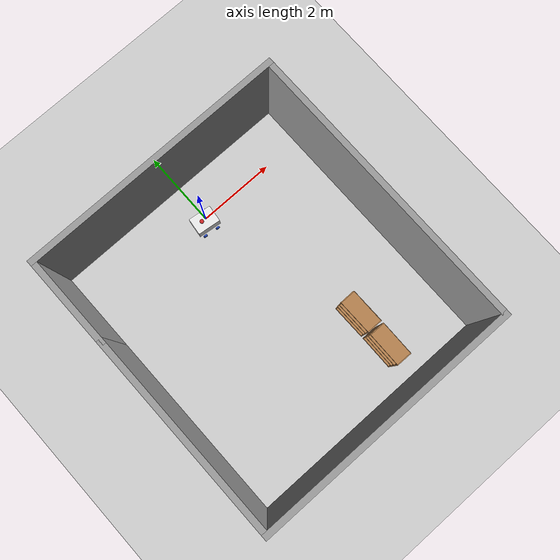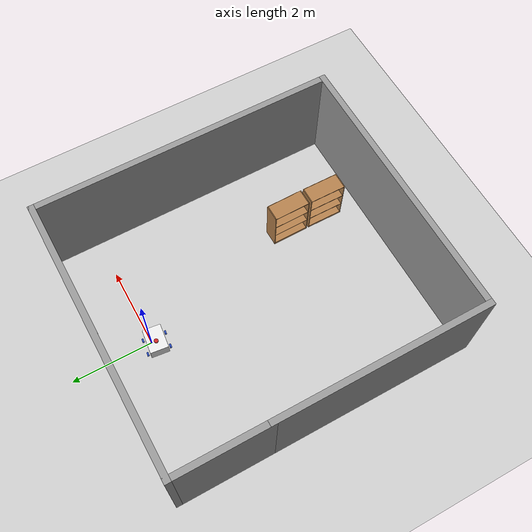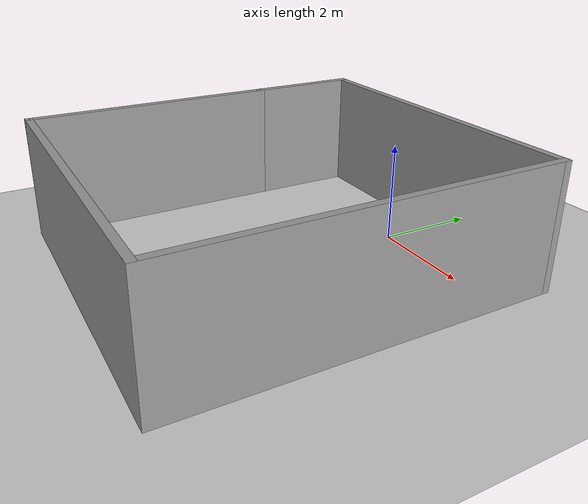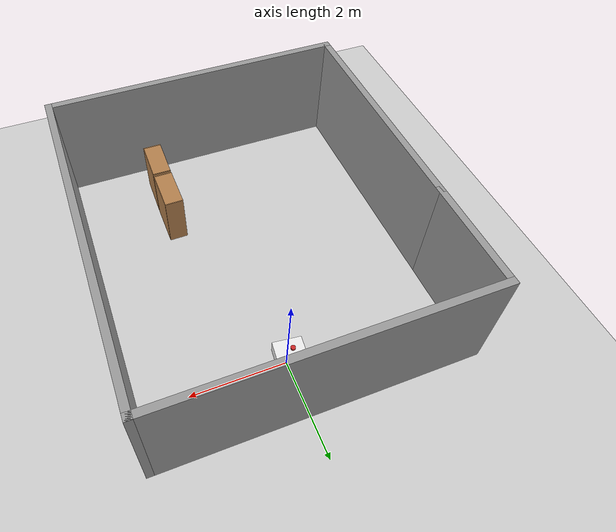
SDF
<sdf version="1.7">
 <world name="default">
  <light name="sun" type="directional">
   <pose>0 0 10 0 -0 0</pose>
   <diffuse>0.8 0.8 0.8 1</diffuse>
   <specular>0.2 0.2 0.2 1</specular>
   <attenuation>
    <range>1000</range>
    <constant>0.9</constant>
    <linear>0.01</linear>
    <quadratic>0.001</quadratic>
   </attenuation>
   <direction>-0.5 0.1 -0.9</direction>
   <spot><inner_angle>0</inner_angle><outer_angle>0</outer_angle><falloff>0</falloff></spot>
  </light>
  <model name="ground_plane">
   <static>1</static>
   <link name="link">
    <collision name="collision">
     <geometry><plane><normal>0 0 1</normal><size>100 100</size></plane></geometry>
     <surface>
      <contact><collide_bitmask>65535</collide_bitmask></contact>
      <friction><ode><mu>100</mu><mu2>50</mu2></ode></friction>
     </surface>
    </collision>
    <visual name="visual">
     <cast_shadows>0</cast_shadows>
     <geometry><plane><normal>0 0 1</normal><size>100 100</size></plane></geometry>
     <material>
      <script><uri>file://media/materials/scripts/gazebo.material</uri><name>Gazebo/Grey</name></script>
     </material>
    </visual>
   </link>
  </model>
  <gravity>0 0 -9.8</gravity>
  <magnetic_field>6e-06 2.3e-05 -4.2e-05</magnetic_field>
  <atmosphere type="adiabatic"/>
  <physics type="ode">
   <max_step_size>0.001</max_step_size>
   <real_time_factor>1</real_time_factor>
   <real_time_update_rate>1000</real_time_update_rate>
  </physics>
  <scene><ambient>0.4 0.4 0.4 1</ambient><background>0.7 0.7 0.7 1</background><shadows>1</shadows></scene>
  <audio><device>default</device></audio>
  <spherical_coordinates>
   <surface_model>EARTH_WGS84</surface_model>
   <latitude_deg>0</latitude_deg>
   <longitude_deg>0</longitude_deg>
   <elevation>0</elevation>
   <heading_deg>0</heading_deg>
  </spherical_coordinates>
  <model name="mybot_2wd">
   <link name="base_link">
    <inertial>
     <pose>-0.002258 0 0.165484 0 -0 0</pose>
     <mass>3.1</mass>
     <inertia>
      <ixx>0.0737726</ixx>
      <ixy>0</ixy>
      <ixz>0.00115161</ixz>
      <iyy>0.115847</iyy>
      <iyz>0</iyz>
      <izz>0.138999</izz>
     </inertia>
    </inertial>
    <collision name="base_link_fixed_joint_lump__chassis_collision">
     <pose>0 0 0.16 0 -0 0</pose>
     <geometry><box><size>0.6 0.44 0.3</size></box></geometry>
    </collision>
    <collision name="base_link_fixed_joint_lump__laser_frame_collision_1">
     <pose>-0.07 0 0.33 0 -0 0</pose>
     <geometry><cylinder><length>0.04</length><radius>0.05</radius></cylinder></geometry>
    </collision>
    <visual name="base_link_fixed_joint_lump__chassis_visual">
     <pose>0 0 0.16 0 -0 0</pose>
     <geometry><box><size>0.6 0.44 0.3</size></box></geometry>
     <material>
      <script><name>Gazebo/White</name><uri>file://media/materials/scripts/gazebo.material</uri></script>
     </material>
    </visual>
    <visual name="base_link_fixed_joint_lump__laser_frame_visual_1">
     <pose>-0.07 0 0.33 0 -0 0</pose>
     <geometry><cylinder><length>0.04</length><radius>0.05</radius></cylinder></geometry>
     <material>
      <script><name>Gazebo/Red</name><uri>file://media/materials/scripts/gazebo.material</uri></script>
     </material>
    </visual>
    <sensor name="laser" type="ray">
     <visualize>1</visualize>
     <update_rate>10</update_rate>
     <ray>
      <scan>
       <horizontal>
        <samples>360</samples>
        <resolution>1</resolution>
        <min_angle>-3.14</min_angle>
        <max_angle>3.14</max_angle>
       </horizontal>
       <vertical><samples>1</samples><min_angle>0</min_angle><max_angle>0</max_angle></vertical>
      </scan>
      <range><min>0.3</min><max>12</max><resolution>0.01</resolution></range>
     </ray>
     <plugin name="laser_controller" filename="libgazebo_ros_ray_sensor.so">
      <ros><argument>~/out:=scan</argument></ros>
      <output_type>sensor_msgs/LaserScan</output_type>
      <frame_name>laser_frame</frame_name>
     </plugin>
     <pose>-0.07 0 0.33 0 -0 0</pose>
    </sensor>
   </link>
   <joint name="left_front_wheel_joint" type="revolute">
    <pose relative_to="base_link">0.18 0.275 0 -1.5707 0 0</pose>
    <parent>base_link</parent>
    <child>left_front_wheel</child>
    <axis>
     <xyz>0 0 1</xyz>
     <limit><lower>-1e+16</lower><upper>1e+16</upper></limit>
     <dynamics><spring_reference>0</spring_reference><spring_stiffness>0</spring_stiffness></dynamics>
    </axis>
   </joint>
   <link name="left_front_wheel">
    <pose relative_to="left_front_wheel_joint">0 0 0 0 -0 0</pose>
    <inertial>
     <mass>0.2</mass>
     <inertia>
      <ixx>0.000151667</ixx>
      <ixy>0</ixy>
      <ixz>0</ixz>
      <iyy>0.000151667</iyy>
      <iyz>0</iyz>
      <izz>0.00025</izz>
     </inertia>
    </inertial>
    <collision name="left_front_wheel_collision">
     <geometry><cylinder><length>0.04</length><radius>0.05</radius></cylinder></geometry>
    </collision>
    <visual name="left_front_wheel_visual">
     <geometry><cylinder><length>0.04</length><radius>0.05</radius></cylinder></geometry>
     <material>
      <script><name>Gazebo/Blue</name><uri>file://media/materials/scripts/gazebo.material</uri></script>
     </material>
    </visual>
   </link>
   <joint name="left_rear_wheel_joint" type="revolute">
    <pose relative_to="base_link">-0.18 0.275 0 -1.5707 0 0</pose>
    <parent>base_link</parent>
    <child>left_rear_wheel</child>
    <axis>
     <xyz>0 0 1</xyz>
     <limit><lower>-1e+16</lower><upper>1e+16</upper></limit>
     <dynamics><spring_reference>0</spring_reference><spring_stiffness>0</spring_stiffness></dynamics>
    </axis>
   </joint>
   <link name="left_rear_wheel">
    <pose relative_to="left_rear_wheel_joint">0 0 0 0 -0 0</pose>
    <inertial>
     <mass>0.2</mass>
     <inertia>
      <ixx>0.000151667</ixx>
      <ixy>0</ixy>
      <ixz>0</ixz>
      <iyy>0.000151667</iyy>
      <iyz>0</iyz>
      <izz>0.00025</izz>
     </inertia>
    </inertial>
    <collision name="left_rear_wheel_collision">
     <geometry><cylinder><length>0.04</length><radius>0.05</radius></cylinder></geometry>
     <surface><friction><ode><mu>0.001</mu><mu2>0.001</mu2></ode></friction></surface>
    </collision>
    <visual name="left_rear_wheel_visual">
     <geometry><cylinder><length>0.04</length><radius>0.05</radius></cylinder></geometry>
     <material>
      <script><name>Gazebo/Blue</name><uri>file://media/materials/scripts/gazebo.material</uri></script>
     </material>
    </visual>
   </link>
   <joint name="right_front_wheel_joint" type="revolute">
    <pose relative_to="base_link">0.18 -0.275 0 1.5707 -0 0</pose>
    <parent>base_link</parent>
    <child>right_front_wheel</child>
    <axis>
     <xyz>0 0 -1</xyz>
     <limit><lower>-1e+16</lower><upper>1e+16</upper></limit>
     <dynamics><spring_reference>0</spring_reference><spring_stiffness>0</spring_stiffness></dynamics>
    </axis>
   </joint>
   <link name="right_front_wheel">
    <pose relative_to="right_front_wheel_joint">0 0 0 0 -0 0</pose>
    <inertial>
     <mass>0.2</mass>
     <inertia>
      <ixx>0.000151667</ixx>
      <ixy>0</ixy>
      <ixz>0</ixz>
      <iyy>0.000151667</iyy>
      <iyz>0</iyz>
      <izz>0.00025</izz>
     </inertia>
    </inertial>
    <collision name="right_front_wheel_collision">
     <geometry><cylinder><length>0.04</length><radius>0.05</radius></cylinder></geometry>
    </collision>
    <visual name="right_front_wheel_visual">
     <geometry><cylinder><length>0.04</length><radius>0.05</radius></cylinder></geometry>
     <material>
      <script><name>Gazebo/Blue</name><uri>file://media/materials/scripts/gazebo.material</uri></script>
     </material>
    </visual>
   </link>
   <joint name="right_rear_wheel_joint" type="revolute">
    <pose relative_to="base_link">-0.18 -0.275 0 1.5707 -0 0</pose>
    <parent>base_link</parent>
    <child>right_rear_wheel</child>
    <axis>
     <xyz>0 0 -1</xyz>
     <limit><lower>-1e+16</lower><upper>1e+16</upper></limit>
     <dynamics><spring_reference>0</spring_reference><spring_stiffness>0</spring_stiffness></dynamics>
    </axis>
   </joint>
   <link name="right_rear_wheel">
    <pose relative_to="right_rear_wheel_joint">0 0 0 0 -0 0</pose>
    <inertial>
     <mass>0.2</mass>
     <inertia>
      <ixx>0.000151667</ixx>
      <ixy>0</ixy>
      <ixz>0</ixz>
      <iyy>0.000151667</iyy>
      <iyz>0</iyz>
      <izz>0.00025</izz>
     </inertia>
    </inertial>
    <collision name="right_rear_wheel_collision">
     <geometry><cylinder><length>0.04</length><radius>0.05</radius></cylinder></geometry>
     <surface><friction><ode><mu>0.001</mu><mu2>0.001</mu2></ode></friction></surface>
    </collision>
    <visual name="right_rear_wheel_visual">
     <geometry><cylinder><length>0.04</length><radius>0.05</radius></cylinder></geometry>
     <material>
      <script><name>Gazebo/Blue</name><uri>file://media/materials/scripts/gazebo.material</uri></script>
     </material>
    </visual>
   </link>
   <static>0</static>
   <plugin name="gazebo_ros2_control" filename="libgazebo_ros2_control.so">
    <parameters>/home/gizmoros2/ros2_ws/install/mybot_2wd/share/mybot_2wd/config/my_controllers.yaml</parameters>
    <parameters>/home/gizmoros2/ros2_ws/install/mybot_2wd/share/mybot_2wd/config/gaz_ros2_ctl_use_sim.yaml</parameters>
   </plugin>
   <pose>-0.087617 -0.086096 0.049997 1.6e-05 2e-06 -0.117341</pose>
  </model>
  <model name="test_home">
   <pose>-0.25 -2.585 0 0 -0 0</pose>
   <link name="Wall_0">
    <collision name="Wall_0_Collision">
     <geometry><box><size>5.25 0.15 2.5</size></box></geometry>
     <pose>0 0 1.25 0 -0 0</pose>
    </collision>
    <visual name="Wall_0_Visual">
     <pose>0 0 1.25 0 -0 0</pose>
     <geometry><box><size>5.25 0.15 2.5</size></box></geometry>
     <material>
      <script><uri>file://media/materials/scripts/gazebo.material</uri><name>Gazebo/Grey</name></script>
      <ambient>1 1 1 1</ambient>
     </material>
     <meta><layer>0</layer></meta>
    </visual>
    <pose>-3.3 -1.125 0 0 -0 -1.5708</pose>
   </link>
   <link name="Wall_1">
    <collision name="Wall_1_Collision">
     <geometry><box><size>6.75 0.15 2.5</size></box></geometry>
     <pose>0 0 1.25 0 -0 0</pose>
    </collision>
    <visual name="Wall_1_Visual">
     <pose>0 0 1.25 0 -0 0</pose>
     <geometry><box><size>6.75 0.15 2.5</size></box></geometry>
     <material>
      <script><uri>file://media/materials/scripts/gazebo.material</uri><name>Gazebo/Grey</name></script>
      <ambient>1 1 1 1</ambient>
     </material>
     <meta><layer>0</layer></meta>
    </visual>
    <pose>-0 -3.675 0 0 -0 0</pose>
   </link>
   <link name="Wall_2">
    <collision name="Wall_2_Collision">
     <geometry><box><size>7.5 0.15 2.5</size></box></geometry>
     <pose>0 0 1.25 0 -0 0</pose>
    </collision>
    <visual name="Wall_2_Visual">
     <pose>0 0 1.25 0 -0 0</pose>
     <geometry><box><size>7.5 0.15 2.5</size></box></geometry>
     <material>
      <script><uri>file://media/materials/scripts/gazebo.material</uri><name>Gazebo/Grey</name></script>
      <ambient>1 1 1 1</ambient>
     </material>
     <meta><layer>0</layer></meta>
    </visual>
    <pose>3.3 0 0 0 -0 1.5708</pose>
   </link>
   <link name="Wall_3">
    <collision name="Wall_3_Collision">
     <geometry><box><size>6.75 0.15 2.5</size></box></geometry>
     <pose>0 0 1.25 0 -0 0</pose>
    </collision>
    <visual name="Wall_3_Visual">
     <pose>0 0 1.25 0 -0 0</pose>
     <geometry><box><size>6.75 0.15 2.5</size></box></geometry>
     <material>
      <script><uri>file://media/materials/scripts/gazebo.material</uri><name>Gazebo/Grey</name></script>
      <ambient>1 1 1 1</ambient>
     </material>
     <meta><layer>0</layer></meta>
    </visual>
    <pose>-0 3.675 0 0 -0 3.14159</pose>
   </link>
   <link name="Wall_4">
    <collision name="Wall_4_Collision">
     <geometry><box><size>2.4 0.15 2.5</size></box></geometry>
     <pose>0 0 1.25 0 -0 0</pose>
    </collision>
    <visual name="Wall_4_Visual">
     <pose>0 0 1.25 0 -0 0</pose>
     <geometry><box><size>2.4 0.15 2.5</size></box></geometry>
     <material>
      <script><uri>file://media/materials/scripts/gazebo.material</uri><name>Gazebo/Grey</name></script>
      <ambient>1 1 1 1</ambient>
     </material>
     <meta><layer>0</layer></meta>
    </visual>
    <pose>-3.3 2.55 0 0 -0 -1.5708</pose>
   </link>
   <static>1</static>
  </model>
  <model name="bookshelf">
   <static>1</static>
   <link name="link">
    <inertial><mass>1</mass></inertial>
    <collision name="back">
     <pose>0 0.005 0.6 0 -0 0</pose>
     <geometry><box><size>0.9 0.01 1.2</size></box></geometry>
    </collision>
    <visual name="visual1">
     <pose>0 0.005 0.6 0 -0 0</pose>
     <geometry><box><size>0.9 0.01 1.2</size></box></geometry>
     <material>
      <script><uri>file://media/materials/scripts/gazebo.material</uri><name>Gazebo/Wood</name></script>
     </material>
    </visual>
    <collision name="left_side">
     <pose>0.45 -0.195 0.6 0 -0 0</pose>
     <geometry><box><size>0.02 0.4 1.2</size></box></geometry>
    </collision>
    <visual name="visual2">
     <pose>0.45 -0.195 0.6 0 -0 0</pose>
     <geometry><box><size>0.02 0.4 1.2</size></box></geometry>
     <material>
      <script><uri>file://media/materials/scripts/gazebo.material</uri><name>Gazebo/Wood</name></script>
     </material>
    </visual>
    <collision name="right_side">
     <pose>-0.45 -0.195 0.6 0 -0 0</pose>
     <geometry><box><size>0.02 0.4 1.2</size></box></geometry>
    </collision>
    <visual name="visual3">
     <pose>-0.45 -0.195 0.6 0 -0 0</pose>
     <geometry><box><size>0.02 0.4 1.2</size></box></geometry>
     <material>
      <script><uri>file://media/materials/scripts/gazebo.material</uri><name>Gazebo/Wood</name></script>
     </material>
    </visual>
    <collision name="bottom">
     <pose>0 -0.195 0.03 0 -0 0</pose>
     <geometry><box><size>0.88 0.4 0.06</size></box></geometry>
    </collision>
    <visual name="visual4">
     <pose>0 -0.195 0.03 0 -0 0</pose>
     <geometry><box><size>0.88 0.4 0.06</size></box></geometry>
     <material>
      <script><uri>file://media/materials/scripts/gazebo.material</uri><name>Gazebo/Wood</name></script>
     </material>
    </visual>
    <collision name="top">
     <pose>0 -0.195 1.19 0 -0 0</pose>
     <geometry><box><size>0.88 0.4 0.02</size></box></geometry>
    </collision>
    <visual name="visual5">
     <pose>0 -0.195 1.19 0 -0 0</pose>
     <geometry><box><size>0.88 0.4 0.02</size></box></geometry>
     <material>
      <script><uri>file://media/materials/scripts/gazebo.material</uri><name>Gazebo/Wood</name></script>
     </material>
    </visual>
    <collision name="low_shelf">
     <pose>0 -0.195 0.43 0 -0 0</pose>
     <geometry><box><size>0.88 0.4 0.02</size></box></geometry>
    </collision>
    <visual name="visual6">
     <pose>0 -0.195 0.43 0 -0 0</pose>
     <geometry><box><size>0.88 0.4 0.02</size></box></geometry>
     <material>
      <script><uri>file://media/materials/scripts/gazebo.material</uri><name>Gazebo/Wood</name></script>
     </material>
    </visual>
    <collision name="high_shelf">
     <pose>0 -0.195 0.8 0 -0 0</pose>
     <geometry><box><size>0.88 0.4 0.02</size></box></geometry>
    </collision>
    <visual name="visual7">
     <pose>0 -0.195 0.8 0 -0 0</pose>
     <geometry><box><size>0.88 0.4 0.02</size></box></geometry>
     <material>
      <script><uri>file://media/materials/scripts/gazebo.material</uri><name>Gazebo/Wood</name></script>
     </material>
    </visual>
   </link>
   <pose>1.28004 -5.21652 0 0 0 -1.58037</pose>
  </model>
  <model name="bookshelf_0">
   <static>1</static>
   <link name="link">
    <inertial><mass>1</mass></inertial>
    <collision name="back">
     <pose>0 0.005 0.6 0 -0 0</pose>
     <geometry><box><size>0.9 0.01 1.2</size></box></geometry>
    </collision>
    <visual name="visual1">
     <pose>0 0.005 0.6 0 -0 0</pose>
     <geometry><box><size>0.9 0.01 1.2</size></box></geometry>
     <material>
      <script><uri>file://media/materials/scripts/gazebo.material</uri><name>Gazebo/Wood</name></script>
     </material>
    </visual>
    <collision name="left_side">
     <pose>0.45 -0.195 0.6 0 -0 0</pose>
     <geometry><box><size>0.02 0.4 1.2</size></box></geometry>
    </collision>
    <visual name="visual2">
     <pose>0.45 -0.195 0.6 0 -0 0</pose>
     <geometry><box><size>0.02 0.4 1.2</size></box></geometry>
     <material>
      <script><uri>file://media/materials/scripts/gazebo.material</uri><name>Gazebo/Wood</name></script>
     </material>
    </visual>
    <collision name="right_side">
     <pose>-0.45 -0.195 0.6 0 -0 0</pose>
     <geometry><box><size>0.02 0.4 1.2</size></box></geometry>
    </collision>
    <visual name="visual3">
     <pose>-0.45 -0.195 0.6 0 -0 0</pose>
     <geometry><box><size>0.02 0.4 1.2</size></box></geometry>
     <material>
      <script><uri>file://media/materials/scripts/gazebo.material</uri><name>Gazebo/Wood</name></script>
     </material>
    </visual>
    <collision name="bottom">
     <pose>0 -0.195 0.03 0 -0 0</pose>
     <geometry><box><size>0.88 0.4 0.06</size></box></geometry>
    </collision>
    <visual name="visual4">
     <pose>0 -0.195 0.03 0 -0 0</pose>
     <geometry><box><size>0.88 0.4 0.06</size></box></geometry>
     <material>
      <script><uri>file://media/materials/scripts/gazebo.material</uri><name>Gazebo/Wood</name></script>
     </material>
    </visual>
    <collision name="top">
     <pose>0 -0.195 1.19 0 -0 0</pose>
     <geometry><box><size>0.88 0.4 0.02</size></box></geometry>
    </collision>
    <visual name="visual5">
     <pose>0 -0.195 1.19 0 -0 0</pose>
     <geometry><box><size>0.88 0.4 0.02</size></box></geometry>
     <material>
      <script><uri>file://media/materials/scripts/gazebo.material</uri><name>Gazebo/Wood</name></script>
     </material>
    </visual>
    <collision name="low_shelf">
     <pose>0 -0.195 0.43 0 -0 0</pose>
     <geometry><box><size>0.88 0.4 0.02</size></box></geometry>
    </collision>
    <visual name="visual6">
     <pose>0 -0.195 0.43 0 -0 0</pose>
     <geometry><box><size>0.88 0.4 0.02</size></box></geometry>
     <material>
      <script><uri>file://media/materials/scripts/gazebo.material</uri><name>Gazebo/Wood</name></script>
     </material>
    </visual>
    <collision name="high_shelf">
     <pose>0 -0.195 0.8 0 -0 0</pose>
     <geometry><box><size>0.88 0.4 0.02</size></box></geometry>
    </collision>
    <visual name="visual7">
     <pose>0 -0.195 0.8 0 -0 0</pose>
     <geometry><box><size>0.88 0.4 0.02</size></box></geometry>
     <material>
      <script><uri>file://media/materials/scripts/gazebo.material</uri><name>Gazebo/Wood</name></script>
     </material>
    </visual>
   </link>
   <pose>1.28057 -4.23895 0 0 0 -1.56259</pose>
  </model>
 </world>
</sdf>
